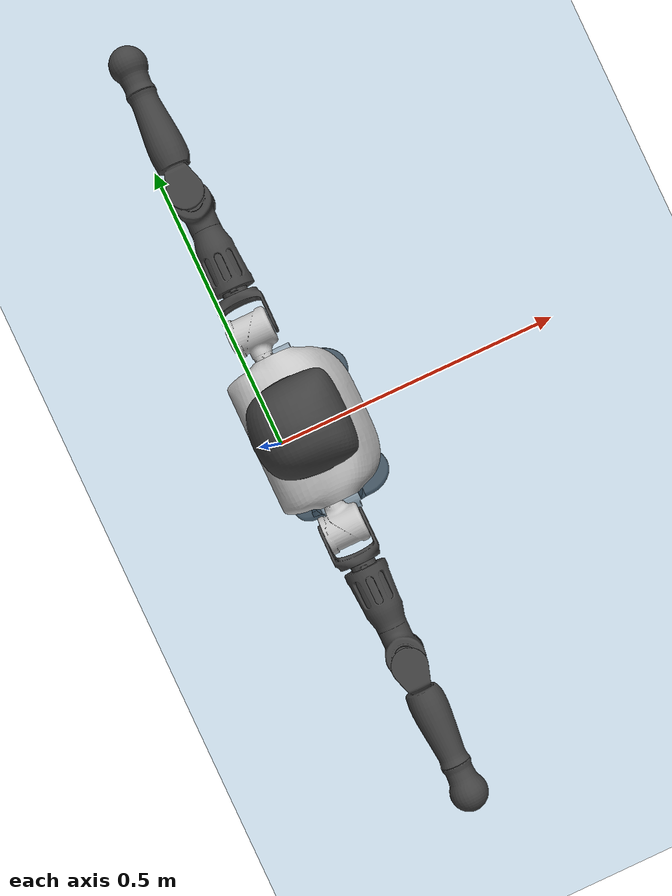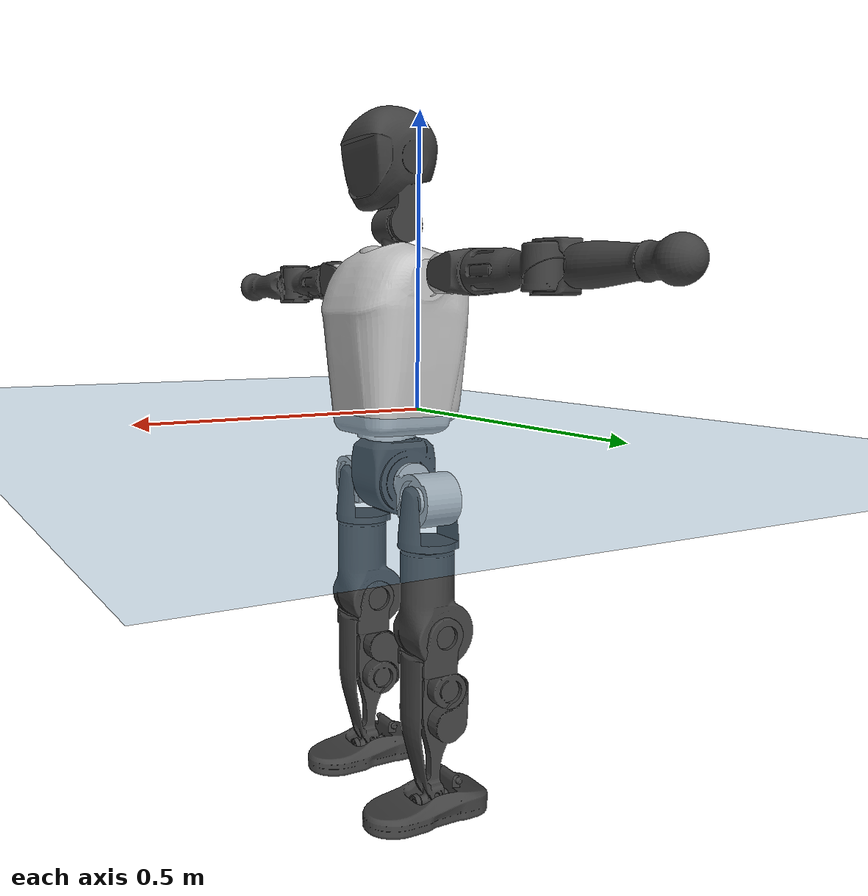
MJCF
<mujoco model="T1">
  <compiler angle="radian" assetdir="assets" balanceinertia="true" inertiafromgeom="false"/>

  <option timestep="0.005" density="1.2" viscosity="2e-05"/>

  <size nkey="1"/>

  <visual>
    <quality shadowsize="8192"/>
    <map shadowclip="0.5"/>
  </visual>

  <default>
    <default class="/">
      <joint armature="0.01" damping="0.01" frictionloss="0.1"/>
      <geom contype="0" conaffinity="0" group="1" solref="-1000 -80"/>
      <site size="0.01 0.005 0.005" group="5"/>
      <general forcelimited="true" biastype="affine" gainprm="25" biasprm="0 -25 -0.6"/>
      <default class="t1">
        <geom rgba="0.25 0.25 0.25 1"/>
        <default class="visual">
          <geom type="mesh" group="2"/>
        </default>
        <default class="collision">
          <geom group="3"/>
        </default>
        <default class="foot">
          <geom size="0.1115 0.05 0.015" type="box" condim="6" group="4" priority="1" solimp="0.015 1 0.015"/>
        </default>
        <default class="reward_collision_sphere">
          <geom group="5" rgba="1 0 0 1"/>
        </default>
      </default>
    </default>
  </default>

  <asset>
    <texture type="skybox" colorspace="auto" name="//unnamed_texture_0" builtin="gradient" rgb1="0.95 0.95 0.95" rgb2="0.95 0.95 0.95" width="100" height="600"/>
    <texture type="2d" colorspace="auto" name="texplane" builtin="checker" rgb1="0.345 0.575 0.748" rgb2="0.345 0.575 0.748" markrgb="1 1 1" width="512" height="512"/>
    <material name="MatPlane" class="/" texture="texplane" texuniform="true" texrepeat="2 2" specular="0.9"/>
    <mesh name="Trunk" class="/" file="Trunk.stl"/>
    <mesh name="H1" class="/" file="H1.stl"/>
    <mesh name="H2" class="/" file="H2.stl"/>
    <mesh name="AL1" class="/" file="AL1.stl"/>
    <mesh name="AL2" class="/" file="AL2.stl"/>
    <mesh name="AL3" class="/" file="AL3.stl"/>
    <mesh name="left_hand_link" class="/" file="left_hand_link.stl"/>
    <mesh name="AR1" class="/" file="AR1.stl"/>
    <mesh name="AR2" class="/" file="AR2.stl"/>
    <mesh name="AR3" class="/" file="AR3.stl"/>
    <mesh name="right_hand_link" class="/" file="right_hand_link.stl"/>
    <mesh name="Waist" class="/" file="Waist.stl"/>
    <mesh name="Hip_Pitch_Left" class="/" file="Hip_Pitch_Left.stl"/>
    <mesh name="Hip_Roll_Left" class="/" file="Hip_Roll_Left.stl"/>
    <mesh name="Hip_Yaw_Left" class="/" file="Hip_Yaw_Left.stl"/>
    <mesh name="Shank_Left" class="/" file="Shank_Left.stl"/>
    <mesh name="Ankle_Cross_Left" class="/" file="Ankle_Cross_Left.stl"/>
    <mesh name="left_foot_link" class="/" file="left_foot_link.stl"/>
    <mesh name="Hip_Pitch_Right" class="/" file="Hip_Pitch_Right.stl"/>
    <mesh name="Hip_Roll_Right" class="/" file="Hip_Roll_Right.stl"/>
    <mesh name="Hip_Yaw_Right" class="/" file="Hip_Yaw_Right.stl"/>
    <mesh name="Shank_Right" class="/" file="Shank_Right.stl"/>
    <mesh name="Ankle_Cross_Right" class="/" file="Ankle_Cross_Right.stl"/>
    <mesh name="right_foot_link" class="/" file="right_foot_link.stl"/>
  </asset>

  <worldbody>
    <geom name="floor" class="/" size="100 100 0.125" type="plane" group="0" material="MatPlane"/>
    <light name="toplight_shadow" class="/" pos="0 0 5" dir="0.0990148 0.0990148 -0.990148" type="directional" ambient="0.04 0.04 0.04" diffuse="0.55 0.55 0.55" specular="0.12 0.12 0.12"/>
    <light name="toplight_fill" class="/" pos="0 0 5" dir="0.0990148 0.0990148 -0.990148" type="directional" castshadow="false" ambient="0.04 0.04 0.04" diffuse="0.3 0.3 0.3" specular="0.08 0.08 0.08"/>
    <body name="trunk" childclass="t1" pos="5.78461e-05 0.00233625 0.000161643" quat="1 0.000297517 8.53133e-05 -0.000303511">
      <inertial pos="0.0410768 -0.000125763 0.1062" quat="0.99995 0.000407142 -0.009818 -0.00205779" mass="10.6295" diaginertia="0.0231031 0.129843 0.0573056"/>
      <joint name="//unnamed_joint_0" type="free" armature="0" damping="0" frictionloss="0"/>
      <geom name="//unnamed_geom_1" class="visual" rgba="0.76 0.76 0.76 1" mesh="Trunk"/>
      <geom name="//unnamed_geom_2" class="collision" size="0.0720257 0.0960342 0.144051" pos="0.0458805 0 0.121562" type="box"/>
      <geom name="//unnamed_geom_3" class="reward_collision_sphere" size="0.110439" pos="0.0458805 0 0.101301"/>
      <geom name="//unnamed_geom_4" class="reward_collision_sphere" size="0.0144051" pos="0.0458805 0.0937837 0"/>
      <geom name="//unnamed_geom_5" class="reward_collision_sphere" size="0.0144051" pos="0.0458805 -0.0937837 0"/>
      <geom name="//unnamed_geom_6" class="reward_collision_sphere" size="0.0144051" pos="0.0458805 0.118057 0.182343"/>
      <geom name="//unnamed_geom_7" class="reward_collision_sphere" size="0.0144051" pos="0.0458805 -0.118057 0.182343"/>
      <site name="imu" pos="9.6672e-05 0.000227815 0.0032114" size="0.00960342"/>
      <camera name="track" pos="0 -2.20668 0" quat="0.707107 0.707107 0 0" mode="trackcom"/>
      <camera name="ego_camera" pos="0.0932904 0 0.425466" quat="-0.5 -0.5 0.5 0.5"/>
      <body name="H1" pos="0.0490482 -9.18693e-05 0.247124" quat="1 0.000152056 0.000133717 4.85728e-05">
        <inertial pos="0.00017799 0.000877924 0.0602468" quat="0.765194 -0.0129805 0.00445127 0.643654" mass="0.411406" diaginertia="6.6349e-05 0.0003749 0.000158265"/>
        <joint name="AAHead_yaw" pos="0 0 0" axis="0.00120886 0.00154797 0.999998" range="-1.54292 1.5261" armature="0.00948175" damping="0" frictionloss="0.109091"/>
        <geom name="//unnamed_geom_8" class="visual" mesh="H1"/>
        <body name="H2" pos="-0.00388722 0.00197137 0.0636773" quat="1 -0.000178654 0.000152827 -3.69695e-05">
          <inertial pos="0.00520744 0.00186169 0.100189" quat="0.988412 0.106313 -0.074847 -0.0783433" mass="0.56119" diaginertia="0.000516531 0.00306598 0.00182426"/>
          <joint name="Head_pitch" pos="0 0 0" axis="0.000683826 -1 0.000612956" range="-1.26 0.347722" armature="0.0099144" damping="0.00492698" frictionloss="0.0934598"/>
          <geom name="//unnamed_geom_9" class="visual" mesh="H2"/>
          <geom name="//unnamed_geom_10" class="collision" size="0.0768274" pos="0.00764675 0 0.111432"/>
          <geom name="//unnamed_geom_11" class="reward_collision_sphere" size="0.0864308" pos="0.0152935 0 0.101301"/>
        </body>
      </body>
      <body name="AL1" pos="0.0442885 0.120387 0.22473" quat="1 -5.38142e-05 0.000574318 -0.000108535">
        <inertial pos="-7.75193e-06 0.0466454 -0.00314996" quat="0.508423 0.495336 -0.507488 0.488472" mass="0.453757" diaginertia="0.000356 0.00201288 0.000303022"/>
        <joint name="Left_Shoulder_Pitch" pos="0 0 0" axis="0.00105042 0.99999 0.00438198" range="-3.32149 1.22674" armature="0.00937242" damping="0.0224225" frictionloss="0.0826139"/>
        <geom name="//unnamed_geom_12" class="visual" rgba="0.76 0.76 0.76 1" mesh="AL1"/>
        <body name="AL2" pos="0.00175099 0.0509066 0.000485263" quat="1 6.96079e-06 1.71585e-05 7.44901e-06">
          <inertial pos="0.000430162 0.0430051 -0.000745976" quat="0.47731 0.509653 -0.493981 0.518085" mass="0.142997" diaginertia="0.000100984 0.00054207 0.000191413"/>
          <joint name="Left_Shoulder_Roll" pos="0 0 0" axis="-0.999998 -0.000388522 0.00184512" range="-1.58621 1.70269" armature="0.0100524" damping="0.0047139" frictionloss="0.0965916"/>
          <geom name="//unnamed_geom_13" class="visual" mesh="AL2"/>
          <body name="AL3" pos="0.000678457 0.0644565 -0.00047176" quat="1 0.00024601 0.000137955 -4.92505e-05">
            <inertial pos="-0.00183449 0.0942602 0.000521709" quat="0.705971 0.708239 -0.00122429 0.000663097" mass="0.906547" diaginertia="0.00346034 0.020887 0.00063589"/>
            <joint name="Left_Elbow_Pitch" pos="0 0 0" axis="-0.000664334 -0.999998 -0.00168251" range="-2.24973 2.25712" armature="0.00858618" damping="0.0193023" frictionloss="0.109412"/>
            <geom name="//unnamed_geom_14" class="visual" mesh="AL3"/>
            <geom name="//unnamed_geom_15" class="collision" size="0.0288103 0.0720257" pos="0 0.0551669 0" quat="0.707105 0.707108 0 0" type="cylinder"/>
            <geom name="//unnamed_geom_16" class="reward_collision_sphere" size="0.0345723"/>
            <body name="left_hand_link" pos="-0.00204462 0.162645 -0.000839195" quat="0.999999 -0.000576253 7.70653e-05 -0.00121545">
              <inertial pos="-1.97854e-05 0.123686 0.00260333" quat="0.704523 0.709681 0.000486627 0.000658319" mass="0.277066" diaginertia="0.00212613 0.0135337 0.000227708"/>
              <joint name="Left_Elbow_Yaw" pos="0 0 0" axis="0.0013119 0.00382208 0.999992" range="-2.39674 -0.0211043" armature="0.010129" damping="0.00817239" frictionloss="0.107511"/>
              <geom name="//unnamed_geom_17" class="visual" mesh="left_hand_link"/>
              <geom name="//unnamed_geom_18" class="collision" size="0.0288103 0.08403" pos="0 0.143434 0" quat="0.707105 0.707108 0 0" type="cylinder"/>
              <geom name="//unnamed_geom_19" class="reward_collision_sphere" size="0.0480171"/>
              <geom name="//unnamed_geom_20" class="reward_collision_sphere" size="0.033612" pos="0 0.121367 0"/>
              <geom name="//unnamed_geom_21" class="reward_collision_sphere" size="0.033612" pos="0 0.237218 0"/>
            </body>
          </body>
        </body>
      </body>
      <body name="AR1" pos="0.0457637 -0.115861 0.223214" quat="1 8.79027e-05 0.000504759 -2.44848e-05">
        <inertial pos="-0.00287532 -0.0526725 0.00184732" quat="0.505426 0.49557 -0.513304 0.485257" mass="0.45918" diaginertia="0.000339786 0.00203518 0.00030481"/>
        <joint name="Right_Shoulder_Pitch" pos="0 0 0" axis="0.0148988 -0.999839 0.0100329" range="-1.22752 3.35595" armature="0.0089644" damping="0" frictionloss="0.0964314"/>
        <geom name="//unnamed_geom_22" class="visual" rgba="0.76 0.76 0.76 1" mesh="AR1"/>
        <body name="AR2" pos="-6.45673e-05 -0.0482248 0.00420072" quat="0.999999 0.00125215 7.54789e-05 6.29153e-05">
          <inertial pos="-4.34052e-05 -0.0415671 0.00243915" quat="0.513046 0.484969 -0.514976 0.486198" mass="0.140265" diaginertia="0.000103676 0.000558643 0.000186601"/>
          <joint name="Right_Shoulder_Roll" pos="0 0 0" axis="-0.999954 0.00452025 0.00843562" range="-1.69244 1.56744" armature="0.00949525" damping="0.0207688" frictionloss="0.0997948"/>
          <geom name="//unnamed_geom_23" class="visual" mesh="AR2"/>
          <body name="AR3" pos="0.00243631 -0.0653693 -0.00288415" quat="0.999999 1.07081e-05 -0.000991295 -0.000534917">
            <inertial pos="0.000452412 -0.0952359 0.00203496" quat="0.710012 0.704126 0.00903334 -0.00299728" mass="0.907" diaginertia="0.00328773 0.020712 0.000665385"/>
            <joint name="Right_Elbow_Pitch" pos="0 0 0" axis="-0.0129882 0.999906 -0.00445643" stiffness="0.00118122" range="-2.28588 2.20997" armature="0.0087643" damping="0.0137094" frictionloss="0.0961111"/>
            <geom name="//unnamed_geom_24" class="visual" mesh="AR3"/>
            <geom name="//unnamed_geom_25" class="collision" size="0.0288103 0.0720257" pos="0 -0.0551669 0" quat="0.707105 0.707108 0 0" type="cylinder"/>
            <geom name="//unnamed_geom_26" class="reward_collision_sphere" size="0.0345723"/>
            <body name="right_hand_link" pos="-7.12986e-05 -0.1614 -0.000540426" quat="1 6.64592e-06 -3.10812e-05 -5.06599e-05">
              <inertial pos="-0.00193654 -0.119078 -0.00155791" quat="0.713064 0.701061 0.00699357 0.0022804" mass="0.280739" diaginertia="0.00212769 0.0123885 0.000229055"/>
              <joint name="Right_Elbow_Yaw" pos="0 0 0" axis="-0.00304322 0.00683742 0.999972" range="0.00169612 2.43396" armature="0.00842465" damping="0" frictionloss="0.0932183"/>
              <geom name="//unnamed_geom_27" class="visual" mesh="right_hand_link"/>
              <geom name="//unnamed_geom_28" class="collision" size="0.0288103 0.08403" pos="0 -0.143434 0" quat="0.707105 0.707108 0 0" type="cylinder"/>
              <geom name="//unnamed_geom_29" class="reward_collision_sphere" size="0.0480171"/>
              <geom name="//unnamed_geom_30" class="reward_collision_sphere" size="0.033612" pos="0 -0.121367 0"/>
              <geom name="//unnamed_geom_31" class="reward_collision_sphere" size="0.033612" pos="0 -0.237218 0"/>
            </body>
          </body>
        </body>
      </body>
      <body name="Waist" pos="0.0472764 -0.00287955 -0.11526" quat="1 0.000276011 0.000361528 -0.000127538">
        <inertial pos="0.0051311 -0.00173483 0.0104149" quat="0.983112 -0.00138444 -0.182997 -0.000783693" mass="2.33541" diaginertia="0.00138645 0.00886099 0.00499417"/>
        <joint name="Waist" pos="0 0 0" axis="0.00084973 -0.0105431 0.999944" range="-1.60658 1.62608" armature="0.00916775" damping="0.00629508" frictionloss="0.0950213"/>
        <geom name="//unnamed_geom_32" class="visual" mesh="Waist"/>
        <body name="Hip_Pitch_Left" pos="0.00135694 0.115941 0.000496344" quat="1 -3.15281e-05 2.84354e-06 -8.60127e-05">
          <inertial pos="-0.00135687 -0.00900686 -0.0176222" quat="0.976029 0.217542 0.00616805 -0.00197419" mass="0.911571" diaginertia="0.000488772 0.0023753 0.00136307"/>
          <joint name="Left_Hip_Pitch" pos="0 0 0" axis="-0.00658352 0.999948 -0.00780634" range="-1.77526 1.55461" armature="0.00956409" damping="0" frictionloss="0.0909719"/>
          <geom name="//unnamed_geom_33" class="visual" rgba="0.76 0.76 0.76 1" mesh="Hip_Pitch_Left"/>
          <body name="Hip_Roll_Left" pos="0.00349618 0.000126356 -0.0208126" quat="1 -0.000232669 -6.22933e-06 -0.000259441">
            <inertial pos="0.00215163 -0.00140282 -0.0552735" quat="0.70349 0.00685607 -0.00815524 0.710626" mass="0.350489" diaginertia="0.000458469 0.00262272 0.000555343"/>
            <joint name="Left_Hip_Roll" pos="0 0 0" axis="-0.999947 -0.00695669 -0.00753576" stiffness="0.0010685" range="-1.52827 0.19897" armature="0.0093795" damping="0.0194917" frictionloss="0.0864021"/>
            <geom name="//unnamed_geom_34" class="visual" mesh="Hip_Roll_Left"/>
            <geom name="//unnamed_geom_35" class="reward_collision_sphere" size="0.0528188"/>
            <body name="Hip_Yaw_Left" pos="-0.000665226 0.000820441 -0.0844415" quat="1 1.54794e-05 3.14675e-05 -5.21996e-05">
              <inertial pos="-0.00322115 -0.00135551 -0.0906744" quat="0.688275 -0.0331015 -0.0373751 0.72373" mass="1.84626" diaginertia="0.00653606 0.0421671 0.00272066"/>
              <joint name="Left_Hip_Yaw" pos="0 0 0" axis="0.00689973 0.000132203 -0.999976" stiffness="0.00370415" range="-0.984646 1.04178" armature="0.00862231" damping="0" frictionloss="0.0928423"/>
              <geom name="//unnamed_geom_36" class="visual" mesh="Hip_Yaw_Left"/>
              <geom name="//unnamed_geom_37" class="collision" size="0.0480171 0.0768274" type="cylinder"/>
              <body name="Shank_Left" pos="-0.0119368 0.000253701 -0.135474" quat="1 9.70073e-05 0.000149824 -0.000239441">
                <inertial pos="-0.00162186 0.00166012 -0.129014" quat="0.99758 0.000686223 -0.0212642 0.0661931" mass="1.60236" diaginertia="0.00954042 0.0588071 0.00202865"/>
                <joint name="Left_Knee_Pitch" pos="0 0 0" axis="0.0171556 0.999823 0.00776381" range="-0.0446446 2.33617" armature="0.0105915" damping="0" frictionloss="0.0945904"/>
                <geom name="//unnamed_geom_38" class="visual" mesh="Shank_Left"/>
                <geom name="//unnamed_geom_39" class="collision" size="0.0480171 0.0720257" pos="0 0 -0.121562" type="cylinder"/>
                <geom name="//unnamed_geom_40" class="reward_collision_sphere" size="0.0624223"/>
                <body name="Ankle_Cross_Left" pos="0.000325229 -0.0029218 -0.283393" quat="1 0.000296571 0.000195681 0.000130253">
                  <inertial pos="-0.00274261 0.000462084 -0.00890636" quat="0.4449 0.54948 0.550895 0.443452" mass="0.0687367" diaginertia="7.59553e-06 4.31794e-05 1.24756e-05"/>
                  <joint name="Left_Ankle_Pitch" pos="0 0 0" axis="-0.006434 0.999957 -0.00664781" range="-0.867084 0.33382" armature="0.00933322" damping="0.00644682" frictionloss="0.100038"/>
                  <geom name="//unnamed_geom_41" class="visual" mesh="Ankle_Cross_Left"/>
                  <body name="left_foot_link" pos="0.00116357 -0.00126423 -0.0114481" quat="0.999999 -4.37846e-05 -0.00103319 0.00026899">
                    <inertial pos="-0.000692801 -0.000144311 -0.01032" quat="0.000192896 0.621163 0.000384667 0.783681" mass="0.569485" diaginertia="0.000665995 0.00379881 0.00218083"/>
                    <joint name="Left_Ankle_Roll" pos="0 0 0" axis="-0.999877 0.00222546 0.0155132" stiffness="0.00819466" range="-0.485477 0.496008" armature="0.00959502" damping="0.00514058" frictionloss="0.0948718"/>
                    <geom name="//unnamed_geom_42" class="visual" mesh="left_foot_link"/>
                    <geom name="left_foot" class="foot" size="0.107501 0.0475481 0.0159175" pos="0.00764675 0 -0.0151952"/>
                    <geom name="//unnamed_geom_44" class="reward_collision_sphere" size="0.0499378" pos="0.00764675 0 -0.0151952"/>
                    <geom name="//unnamed_geom_45" class="reward_collision_sphere" size="0.0288103" pos="0.0726442 -0.0253768 -0.0151952"/>
                    <geom name="//unnamed_geom_46" class="reward_collision_sphere" size="0.0288103" pos="-0.0535273 -0.0253768 -0.0151952"/>
                    <site name="left_foot" class="foot" pos="0.00764675 0 -0.0151952" size="0.00960342"/>
                  </body>
                </body>
              </body>
            </body>
          </body>
        </body>
        <body name="Hip_Pitch_Right" pos="-0.00230948 -0.115005 0.000670911" quat="1 2.93352e-05 -6.32878e-06 -4.49808e-05">
          <inertial pos="0.00141994 0.00906169 -0.0159988" quat="0.971246 -0.236622 0.0250468 -0.00800174" mass="0.929463" diaginertia="0.000486389 0.00244684 0.00141503"/>
          <joint name="Right_Hip_Pitch" pos="0 0 0" axis="-0.00329217 -0.99999 -0.00295355" range="-1.52204 1.78178" armature="0.00987071" damping="0.0215746" frictionloss="0.0938552"/>
          <geom name="//unnamed_geom_47" class="visual" rgba="0.76 0.76 0.76 1" mesh="Hip_Pitch_Right"/>
          <body name="Hip_Roll_Right" pos="-0.000710588 0.000689627 -0.0185694" quat="1 0.000182492 -7.30558e-05 -3.56415e-05">
            <inertial pos="-0.00119442 0.000393312 -0.0514437" quat="0.706376 -0.00492382 -0.00575529 0.707796" mass="0.341755" diaginertia="0.000464729 0.00256761 0.000567281"/>
            <joint name="Right_Hip_Roll" pos="0 0 0" axis="-0.999833 0.00895054 0.0159374" range="-0.154646 1.51304" armature="0.0101216" damping="0" frictionloss="0.102059"/>
            <geom name="//unnamed_geom_48" class="visual" mesh="Hip_Roll_Right"/>
            <geom name="//unnamed_geom_49" class="reward_collision_sphere" size="0.0528188"/>
            <body name="Hip_Yaw_Right" pos="0.00112057 0.00105344 -0.0821336" quat="1 0.000205973 -1.293e-05 -0.00036452">
              <inertial pos="-0.00619119 -0.00122958 -0.0891451" quat="0.714889 -0.030028 -0.0290896 0.697987" mass="1.8818" diaginertia="0.00686564 0.0432573 0.00270619"/>
              <joint name="Right_Hip_Yaw" pos="0 0 0" axis="-0.000557239 0.0180782 -0.999836" range="-0.98534 0.998541" armature="0.00962906" damping="0.0127545" frictionloss="0.0966186"/>
              <geom name="//unnamed_geom_50" class="visual" mesh="Hip_Yaw_Right"/>
              <geom name="//unnamed_geom_51" class="collision" size="0.0480171 0.0768274" type="cylinder"/>
              <body name="Shank_Right" pos="-0.0117591 0.00030816 -0.136519" quat="1 0.000102215 1.29422e-05 -0.000231011">
                <inertial pos="-0.00307625 0.0026172 -0.126639" quat="0.999246 -0.00207694 -0.021695 -0.0321423" mass="1.63706" diaginertia="0.00906054 0.0587712 0.00208786"/>
                <joint name="Right_Knee_Pitch" pos="0 0 0" axis="0.0074244 -0.999944 -0.00756624" stiffness="0.00946702" range="-2.35697 -0.0131261" armature="0.00909437" damping="0.00775519" frictionloss="0.0859351"/>
                <geom name="//unnamed_geom_52" class="visual" mesh="Shank_Right"/>
                <geom name="//unnamed_geom_53" class="collision" size="0.0480171 0.0720257" pos="0 0 -0.121562" type="cylinder"/>
                <geom name="//unnamed_geom_54" class="reward_collision_sphere" size="0.0624223"/>
                <body name="Ankle_Cross_Right" pos="-0.00230861 -0.00317086 -0.284617" quat="0.999999 0.000680108 0.00108886 -0.000232903">
                  <inertial pos="-0.00167293 -0.00242101 -0.00756834" quat="0.454756 0.548624 0.548221 0.437792" mass="0.0607925" diaginertia="7.32943e-06 4.05077e-05 1.18072e-05"/>
                  <joint name="Right_Ankle_Pitch" pos="0 0 0" axis="-0.00473369 -0.999987 0.00168099" range="-0.381243 0.916511" armature="0.00913856" damping="0.0173255" frictionloss="0.0964361"/>
                  <geom name="//unnamed_geom_55" class="visual" mesh="Ankle_Cross_Right"/>
                  <body name="right_foot_link" pos="-0.00187357 -0.00262184 -0.0104834" quat="1 1.83298e-05 0.000454344 0.000271283">
                    <inertial pos="-0.000339717 -0.00272553 -0.0100034" quat="-0.00163004 0.617657 0.000717013 0.786446" mass="0.596471" diaginertia="0.000709687 0.003775 0.00226096"/>
                    <joint name="Right_Ankle_Roll" pos="0 0 0" axis="-1 0.000748045 5.30546e-05" range="-0.484201 0.419383" armature="0.00982917" damping="0" frictionloss="0.0888976"/>
                    <geom name="//unnamed_geom_56" class="visual" mesh="right_foot_link"/>
                    <geom name="right_foot" class="foot" size="0.100581 0.0486296 0.0137803" pos="0.00764675 0 -0.0151952"/>
                    <geom name="//unnamed_geom_58" class="reward_collision_sphere" size="0.0384137"/>
                    <geom name="//unnamed_geom_59" class="reward_collision_sphere" size="0.0288103" pos="0.00764675 0 -0.0151952"/>
                    <geom name="//unnamed_geom_60" class="reward_collision_sphere" size="0.0288103" pos="0.0726442 0.0253768 -0.0151952"/>
                    <geom name="//unnamed_geom_61" class="reward_collision_sphere" size="0.0288103" pos="-0.0535273 0.0253768 -0.0151952"/>
                    <site name="right_foot" class="foot" pos="0.00764675 0 -0.0151952" size="0.00960342"/>
                  </body>
                </body>
              </body>
            </body>
          </body>
        </body>
      </body>
    </body>
  </worldbody>

  <contact>
    <pair class="/" geom1="floor" geom2="left_foot" name="//unnamed_contact_0"/>
    <pair class="/" geom1="floor" geom2="right_foot" name="//unnamed_contact_1"/>
  </contact>

  <actuator>
    <general name="AAHead_yaw" class="/" joint="AAHead_yaw" forcerange="-6.62766 6.62766" gainprm="24.9419" biasprm="0 -24.9419 -0.552147"/>
    <general name="Head_pitch" class="/" joint="Head_pitch" forcerange="-7.42736 7.42736" gainprm="24.9419" biasprm="0 -24.9419 -0.552147"/>
    <general name="Left_Shoulder_Pitch" class="/" joint="Left_Shoulder_Pitch" forcerange="-15.3735 15.3735" gainprm="24.9419" biasprm="0 -24.9419 -0.552147"/>
    <general name="Left_Shoulder_Roll" class="/" joint="Left_Shoulder_Roll" forcerange="-18.5078 18.5078" gainprm="24.9419" biasprm="0 -24.9419 -0.552147"/>
    <general name="Left_Elbow_Pitch" class="/" joint="Left_Elbow_Pitch" forcerange="-16.7761 16.7761" gainprm="24.9419" biasprm="0 -24.9419 -0.552147"/>
    <general name="Left_Elbow_Yaw" class="/" joint="Left_Elbow_Yaw" forcerange="-17.3837 17.3837" gainprm="24.9419" biasprm="0 -24.9419 -0.552147"/>
    <general name="Right_Shoulder_Pitch" class="/" joint="Right_Shoulder_Pitch" forcerange="-18.6205 18.6205" gainprm="24.9419" biasprm="0 -24.9419 -0.552147"/>
    <general name="Right_Shoulder_Roll" class="/" joint="Right_Shoulder_Roll" forcerange="-18.9343 18.9343" gainprm="24.9419" biasprm="0 -24.9419 -0.552147"/>
    <general name="Right_Elbow_Pitch" class="/" joint="Right_Elbow_Pitch" forcerange="-17.5223 17.5223" gainprm="24.9419" biasprm="0 -24.9419 -0.552147"/>
    <general name="Right_Elbow_Yaw" class="/" joint="Right_Elbow_Yaw" forcerange="-16.6086 16.6086" gainprm="24.9419" biasprm="0 -24.9419 -0.552147"/>
    <general name="Waist" class="/" joint="Waist" forcerange="-29.6469 29.6469" gainprm="24.9419" biasprm="0 -24.9419 -0.552147"/>
    <general name="Left_Hip_Pitch" class="/" joint="Left_Hip_Pitch" forcerange="-42.9061 42.9061" gainprm="24.9419" biasprm="0 -24.9419 -0.552147"/>
    <general name="Left_Hip_Roll" class="/" joint="Left_Hip_Roll" forcerange="-28.308 28.308" gainprm="24.9419" biasprm="0 -24.9419 -0.552147"/>
    <general name="Left_Hip_Yaw" class="/" joint="Left_Hip_Yaw" forcerange="-26.2309 26.2309" gainprm="24.9419" biasprm="0 -24.9419 -0.552147"/>
    <general name="Left_Knee_Pitch" class="/" joint="Left_Knee_Pitch" forcerange="-57.2264 57.2264" gainprm="24.9419" biasprm="0 -24.9419 -0.552147"/>
    <general name="Left_Ankle_Pitch" class="/" joint="Left_Ankle_Pitch" forcerange="-17.394 17.394" gainprm="24.9419" biasprm="0 -24.9419 -0.552147"/>
    <general name="Left_Ankle_Roll" class="/" joint="Left_Ankle_Roll" forcerange="-12.9677 12.9677" gainprm="24.9419" biasprm="0 -24.9419 -0.552147"/>
    <general name="Right_Hip_Pitch" class="/" joint="Right_Hip_Pitch" forcerange="-42.1828 42.1828" gainprm="24.9419" biasprm="0 -24.9419 -0.552147"/>
    <general name="Right_Hip_Roll" class="/" joint="Right_Hip_Roll" forcerange="-28.4107 28.4107" gainprm="24.9419" biasprm="0 -24.9419 -0.552147"/>
    <general name="Right_Hip_Yaw" class="/" joint="Right_Hip_Yaw" forcerange="-31.4513 31.4513" gainprm="24.9419" biasprm="0 -24.9419 -0.552147"/>
    <general name="Right_Knee_Pitch" class="/" joint="Right_Knee_Pitch" forcerange="-57.6982 57.6982" gainprm="24.9419" biasprm="0 -24.9419 -0.552147"/>
    <general name="Right_Ankle_Pitch" class="/" joint="Right_Ankle_Pitch" forcerange="-19.5105 19.5105" gainprm="24.9419" biasprm="0 -24.9419 -0.552147"/>
    <general name="Right_Ankle_Roll" class="/" joint="Right_Ankle_Roll" forcerange="-14.7411 14.7411" gainprm="24.9419" biasprm="0 -24.9419 -0.552147"/>
  </actuator>

  <sensor>
    <gyro site="imu" name="imu_angular_velocity"/>
    <velocimeter site="imu" name="imu_linear_velocity"/>
    <framelinvel objtype="site" objname="left_foot" name="left_foot_global_linear_velocity"/>
    <framelinvel objtype="site" objname="right_foot" name="right_foot_global_linear_velocity"/>
  </sensor>

  <keyframe>
    <key name="home" qpos="0 0 0.6385 1 0 0 0 0 0 0 1.4 0 -0.4 0 -1.4 0 0.4 0 -0.4 0 0 0.8 -0.4 0 0.4 0 0 -0.8 0.4 0"/>
  </keyframe>
</mujoco>
